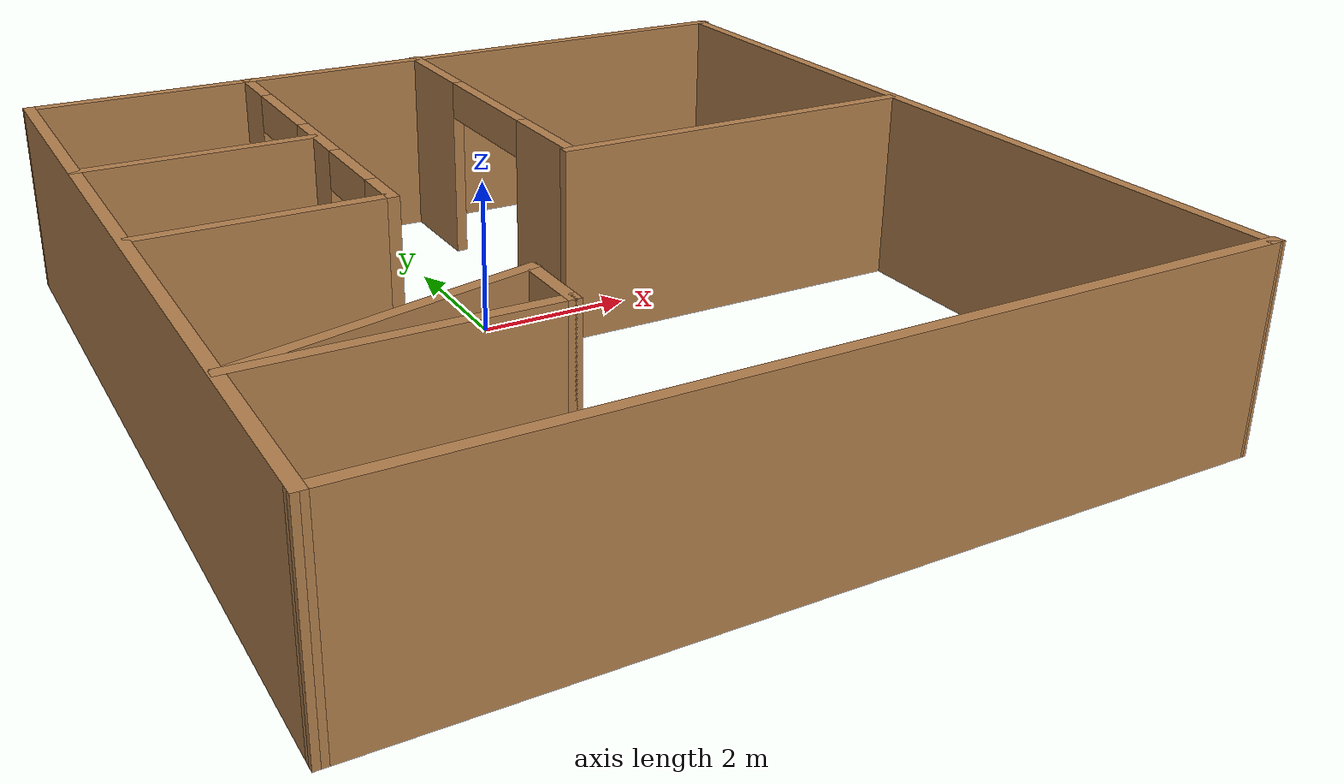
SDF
<?xml version='1.0'?>
<sdf version='1.7'>
  <model name='mir_world'>
    <pose>0.600766 -1.30307 0 0 -0 0</pose>
    <link name='Wall_13'>
      <collision name='Wall_13_Collision'>
        <geometry>
          <box>
            <size>3 0.15 2.5</size>
          </box>
        </geometry>
        <pose>0 0 1.25 0 -0 0</pose>
      </collision>
      <visual name='Wall_13_Visual'>
        <pose>0 0 1.25 0 -0 0</pose>
        <geometry>
          <box>
            <size>3 0.15 2.5</size>
          </box>
        </geometry>
        <material>
          <script>
            <uri>file://media/materials/scripts/gazebo.material</uri>
            <name>Gazebo/Wood</name>
          </script>
          <ambient>1 1 1 1</ambient>
        </material>
        <meta>
          <layer>0</layer>
        </meta>
      </visual>
      <pose>-3.75991 2.53236 0 0 -0 0</pose>
    </link>
    <link name='Wall_15'>
      <pose>-2.26407 2.74322 0 0 -0 -1.5708</pose>
      <visual name='Wall_15_Visual_0'>
        <pose>-2.29575 0 1.25 0 -0 0</pose>
        <geometry>
          <box>
            <size>0.908503 0.15 2.5</size>
          </box>
        </geometry>
        <material>
          <script>
            <uri>file://media/materials/scripts/gazebo.material</uri>
            <name>Gazebo/Wood</name>
          </script>
          <ambient>1 1 1 1</ambient>
        </material>
        <meta>
          <layer>0</layer>
        </meta>
      </visual>
      <collision name='Wall_15_Collision_0'>
        <geometry>
          <box>
            <size>0.908503 0.15 2.5</size>
          </box>
        </geometry>
        <pose>-2.29575 0 1.25 0 -0 0</pose>
      </collision>
      <visual name='Wall_15_Visual_1'>
        <pose>0.250658 0 1.25 0 -0 0</pose>
        <geometry>
          <box>
            <size>1.18431 0.15 2.5</size>
          </box>
        </geometry>
        <material>
          <script>
            <uri>file://media/materials/scripts/gazebo.material</uri>
            <name>Gazebo/Wood</name>
          </script>
          <ambient>1 1 1 1</ambient>
        </material>
        <meta>
          <layer>0</layer>
        </meta>
      </visual>
      <collision name='Wall_15_Collision_1'>
        <geometry>
          <box>
            <size>1.18431 0.15 2.5</size>
          </box>
        </geometry>
        <pose>0.250658 0 1.25 0 -0 0</pose>
      </collision>
      <visual name='Wall_15_Visual_2'>
        <pose>2.39641 0 1.25 0 -0 0</pose>
        <geometry>
          <box>
            <size>0.707187 0.15 2.5</size>
          </box>
        </geometry>
        <material>
          <script>
            <uri>file://media/materials/scripts/gazebo.material</uri>
            <name>Gazebo/Wood</name>
          </script>
          <ambient>1 1 1 1</ambient>
        </material>
        <meta>
          <layer>0</layer>
        </meta>
      </visual>
      <collision name='Wall_15_Collision_2'>
        <geometry>
          <box>
            <size>0.707187 0.15 2.5</size>
          </box>
        </geometry>
        <pose>2.39641 0 1.25 0 -0 0</pose>
      </collision>
      <visual name='Wall_15_Visual_3'>
        <pose>-1.0915 0 2.25 0 -0 0</pose>
        <geometry>
          <box>
            <size>1.5 0.15 0.5</size>
          </box>
        </geometry>
        <material>
          <script>
            <uri>file://media/materials/scripts/gazebo.material</uri>
            <name>Gazebo/Wood</name>
          </script>
          <ambient>1 1 1 1</ambient>
        </material>
        <meta>
          <layer>0</layer>
        </meta>
      </visual>
      <collision name='Wall_15_Collision_3'>
        <geometry>
          <box>
            <size>1.5 0.15 0.5</size>
          </box>
        </geometry>
        <pose>-1.0915 0 2.25 0 -0 0</pose>
      </collision>
      <visual name='Wall_15_Visual_4'>
        <pose>1.44281 0 2.25 0 -0 0</pose>
        <geometry>
          <box>
            <size>1.2 0.15 0.5</size>
          </box>
        </geometry>
        <material>
          <script>
            <uri>file://media/materials/scripts/gazebo.material</uri>
            <name>Gazebo/Wood</name>
          </script>
          <ambient>1 1 1 1</ambient>
        </material>
        <meta>
          <layer>0</layer>
        </meta>
      </visual>
      <collision name='Wall_15_Collision_4'>
        <geometry>
          <box>
            <size>1.2 0.15 0.5</size>
          </box>
        </geometry>
        <pose>1.44281 0 2.25 0 -0 0</pose>
      </collision>
    </link>
    <link name='Wall_16'>
      <collision name='Wall_16_Collision'>
        <geometry>
          <box>
            <size>3 0.15 2.5</size>
          </box>
        </geometry>
        <pose>0 0 1.25 0 -0 0</pose>
      </collision>
      <visual name='Wall_16_Visual'>
        <pose>0 0 1.25 0 -0 0</pose>
        <geometry>
          <box>
            <size>3 0.15 2.5</size>
          </box>
        </geometry>
        <material>
          <script>
            <uri>file://media/materials/scripts/gazebo.material</uri>
            <name>Gazebo/Wood</name>
          </script>
          <ambient>1 1 1 1</ambient>
        </material>
        <meta>
          <layer>0</layer>
        </meta>
      </visual>
      <pose>-3.68907 0.068225 0 0 -0 3.14159</pose>
    </link>
    <link name='Wall_18'>
      <collision name='Wall_18_Collision'>
        <geometry>
          <box>
            <size>3.5 0.15 2.5</size>
          </box>
        </geometry>
        <pose>0 0 1.25 0 -0 0</pose>
      </collision>
      <visual name='Wall_18_Visual'>
        <pose>0 0 1.25 0 -0 0</pose>
        <geometry>
          <box>
            <size>3.5 0.15 2.5</size>
          </box>
        </geometry>
        <material>
          <script>
            <uri>file://media/materials/scripts/gazebo.material</uri>
            <name>Gazebo/Wood</name>
          </script>
          <ambient>1 1 1 1</ambient>
        </material>
        <meta>
          <layer>0</layer>
        </meta>
      </visual>
      <pose>-3.49178 -3.34165 0 0 -0 0</pose>
    </link>
    <link name='Wall_19'>
      <collision name='Wall_19_Collision'>
        <geometry>
          <box>
            <size>1 0.15 2.5</size>
          </box>
        </geometry>
        <pose>0 0 1.25 0 -0 0</pose>
      </collision>
      <visual name='Wall_19_Visual'>
        <pose>0 0 1.25 0 -0 0</pose>
        <geometry>
          <box>
            <size>1 0.15 2.5</size>
          </box>
        </geometry>
        <material>
          <script>
            <uri>file://media/materials/scripts/gazebo.material</uri>
            <name>Gazebo/Wood</name>
          </script>
          <ambient>1 1 1 1</ambient>
        </material>
        <meta>
          <layer>0</layer>
        </meta>
      </visual>
      <pose>-1.81678 -2.91665 0 0 -0 1.5708</pose>
    </link>
    <link name='Wall_2'>
      <collision name='Wall_2_Collision'>
        <geometry>
          <box>
            <size>11 0.15 2.5</size>
          </box>
        </geometry>
        <pose>0 0 1.25 0 -0 0</pose>
      </collision>
      <visual name='Wall_2_Visual'>
        <pose>0 0 1.25 0 -0 0</pose>
        <geometry>
          <box>
            <size>11 0.15 2.5</size>
          </box>
        </geometry>
        <material>
          <script>
            <uri>file://media/materials/scripts/gazebo.material</uri>
            <name>Gazebo/Wood</name>
          </script>
          <ambient>1 1 1 1</ambient>
        </material>
        <meta>
          <layer>0</layer>
        </meta>
      </visual>
      <pose>-5.18932 -0.022833 0 0 -0 -1.5708</pose>
    </link>
    <link name='Wall_20'>
      <collision name='Wall_20_Collision'>
        <geometry>
          <box>
            <size>3.60615 0.15 2.5</size>
          </box>
        </geometry>
        <pose>0 0 1.25 0 -0 0</pose>
      </collision>
      <visual name='Wall_20_Visual'>
        <pose>0 0 1.25 0 -0 0</pose>
        <geometry>
          <box>
            <size>3.60615 0.15 2.5</size>
          </box>
        </geometry>
        <material>
          <script>
            <uri>file://media/materials/scripts/gazebo.material</uri>
            <name>Gazebo/Wood</name>
          </script>
          <ambient>1 1 1 1</ambient>
        </material>
        <meta>
          <layer>0</layer>
        </meta>
      </visual>
      <pose>-3.49178 -2.91665 0 0 -0 -2.8931</pose>
    </link>
    <link name='Wall_23'>
      <pose>0.263882 3.02298 0 0 -0 -1.5708</pose>
      <visual name='Wall_23_Visual_0'>
        <pose>-1.72343 0 1.25 0 -0 0</pose>
        <geometry>
          <box>
            <size>1.55314 0.15 2.5</size>
          </box>
        </geometry>
        <material>
          <script>
            <uri>file://media/materials/scripts/gazebo.material</uri>
            <name>Gazebo/Wood</name>
          </script>
          <ambient>1 1 1 1</ambient>
        </material>
        <meta>
          <layer>0</layer>
        </meta>
      </visual>
      <collision name='Wall_23_Collision_0'>
        <geometry>
          <box>
            <size>1.55314 0.15 2.5</size>
          </box>
        </geometry>
        <pose>-1.72343 0 1.25 0 -0 0</pose>
      </collision>
      <visual name='Wall_23_Visual_1'>
        <pose>1.77657 0 1.25 0 -0 0</pose>
        <geometry>
          <box>
            <size>1.44686 0.15 2.5</size>
          </box>
        </geometry>
        <material>
          <script>
            <uri>file://media/materials/scripts/gazebo.material</uri>
            <name>Gazebo/Wood</name>
          </script>
          <ambient>1 1 1 1</ambient>
        </material>
        <meta>
          <layer>0</layer>
        </meta>
      </visual>
      <collision name='Wall_23_Collision_1'>
        <geometry>
          <box>
            <size>1.44686 0.15 2.5</size>
          </box>
        </geometry>
        <pose>1.77657 0 1.25 0 -0 0</pose>
      </collision>
      <visual name='Wall_23_Visual_2'>
        <pose>0.053139 0 2.25 0 -0 0</pose>
        <geometry>
          <box>
            <size>2 0.15 0.5</size>
          </box>
        </geometry>
        <material>
          <script>
            <uri>file://media/materials/scripts/gazebo.material</uri>
            <name>Gazebo/Wood</name>
          </script>
          <ambient>1 1 1 1</ambient>
        </material>
        <meta>
          <layer>0</layer>
        </meta>
      </visual>
      <collision name='Wall_23_Collision_2'>
        <geometry>
          <box>
            <size>2 0.15 0.5</size>
          </box>
        </geometry>
        <pose>0.053139 0 2.25 0 -0 0</pose>
      </collision>
    </link>
    <link name='Wall_24'>
      <collision name='Wall_24_Collision'>
        <geometry>
          <box>
            <size>5 0.15 2.5</size>
          </box>
        </geometry>
        <pose>0 0 1.25 0 -0 0</pose>
      </collision>
      <visual name='Wall_24_Visual'>
        <pose>0 0 1.25 0 -0 0</pose>
        <geometry>
          <box>
            <size>5 0.15 2.5</size>
          </box>
        </geometry>
        <material>
          <script>
            <uri>file://media/materials/scripts/gazebo.material</uri>
            <name>Gazebo/Wood</name>
          </script>
          <ambient>1 1 1 1</ambient>
        </material>
        <meta>
          <layer>0</layer>
        </meta>
      </visual>
      <pose>2.64866 0.597978 0 0 -0 0</pose>
    </link>
    <link name='Wall_3'>
      <collision name='Wall_3_Collision'>
        <geometry>
          <box>
            <size>10.5287 0.15 2.5</size>
          </box>
        </geometry>
        <pose>0 0 1.25 0 -0 0</pose>
      </collision>
      <visual name='Wall_3_Visual'>
        <pose>0 0 1.25 0 -0 0</pose>
        <geometry>
          <box>
            <size>10.5287 0.15 2.5</size>
          </box>
        </geometry>
        <material>
          <script>
            <uri>file://media/materials/scripts/gazebo.material</uri>
            <name>Gazebo/Wood</name>
          </script>
          <ambient>1 1 1 1</ambient>
        </material>
        <meta>
          <layer>0</layer>
        </meta>
      </visual>
      <pose>0 -5.43778 0 0 -0 0.001938</pose>
    </link>
    <link name='Wall_4'>
      <collision name='Wall_4_Collision'>
        <geometry>
          <box>
            <size>11 0.15 2.5</size>
          </box>
        </geometry>
        <pose>0 0 1.25 0 -0 0</pose>
      </collision>
      <visual name='Wall_4_Visual'>
        <pose>0 0 1.25 0 -0 0</pose>
        <geometry>
          <box>
            <size>11 0.15 2.5</size>
          </box>
        </geometry>
        <material>
          <script>
            <uri>file://media/materials/scripts/gazebo.material</uri>
            <name>Gazebo/Wood</name>
          </script>
          <ambient>1 1 1 1</ambient>
        </material>
        <meta>
          <layer>0</layer>
        </meta>
      </visual>
      <pose>5.14909 -0.002719 0 0 -0 1.5708</pose>
    </link>
    <link name='Wall_5'>
      <collision name='Wall_5_Collision'>
        <geometry>
          <box>
            <size>10.5287 0.15 2.5</size>
          </box>
        </geometry>
        <pose>0 0 1.25 0 -0 0</pose>
      </collision>
      <visual name='Wall_5_Visual'>
        <pose>0 0 1.25 0 -0 0</pose>
        <geometry>
          <box>
            <size>10.5287 0.15 2.5</size>
          </box>
        </geometry>
        <material>
          <script>
            <uri>file://media/materials/scripts/gazebo.material</uri>
            <name>Gazebo/Wood</name>
          </script>
          <ambient>1 1 1 1</ambient>
        </material>
        <meta>
          <layer>0</layer>
        </meta>
      </visual>
      <pose>0 5.41222 0 0 -0 -3.13965</pose>
    </link>
    <static>1</static>
  </model>
</sdf>
